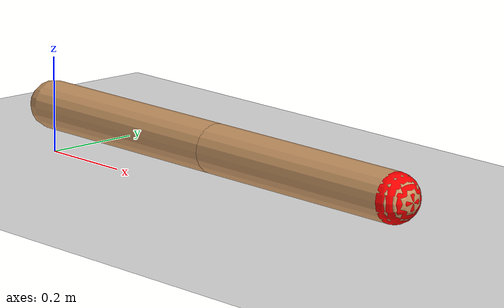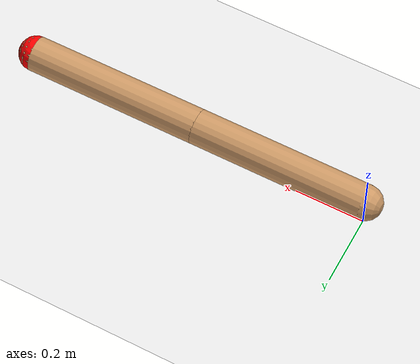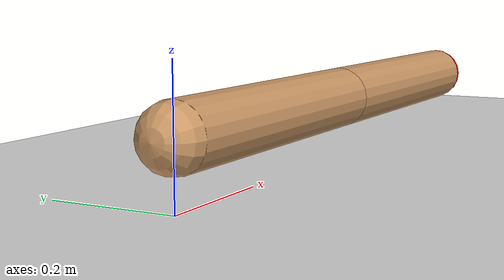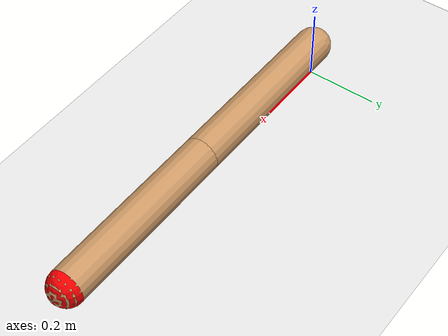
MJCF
<mujoco model="reacher">
    <compiler angle="radian"/>
    <option gravity="0 0 -9.81" timestep="0.01"/>

    <default>
        <joint damping="0.1" limited="true"/>
        <geom friction="1.0 0.1 0.1" density="300" rgba="0.8 0.6 0.4 1"/>
    </default>

    <worldbody>
        <!-- Ground Plane -->
        <geom type="plane" pos="0 0 0" size="2 2 0.1" rgba="0.9 0.9 0.9 1"/>

        <!-- Arm -->
        <body name="base" pos="0 0 0.1">
            <body name="link0" pos="0 0 0">
                <geom type="capsule" fromto="0 0 0 0.5 0 0" size="0.05"/>
                <joint name="joint0" type="hinge" axis="0 0 1" range="-3.14 3.14" damping="0.1"/>
                <body name="link1" pos="0.5 0 0">
                    <geom type="capsule" fromto="0 0 0 0.5 0 0" size="0.05"/>
                    <joint name="joint1" type="hinge" axis="0 0 1" range="-3.14 3.14" damping="0.1"/>
                    <body name="fingertip" pos="0.5 0 0">
                        <geom type="sphere" size="0.05" rgba="0.2 0.8 0.2 1"/>
                        <site name="fingertip_site" pos="0 0 0" size="0.01" rgba="0 0 1 1"/>
                    </body>
                </body>
            </body>
        </body>

        <!-- Target -->
        <site name="target" pos="1.0 0.0 0.1" size="0.05" rgba="1 0 0 1"/>
    </worldbody>

    <actuator>
        <motor joint="joint0" gear="3" ctrllimited="true" ctrlrange="-3 3"/>
        <motor joint="joint1" gear="3" ctrllimited="true" ctrlrange="-3 3"/>
    </actuator>
</mujoco>
